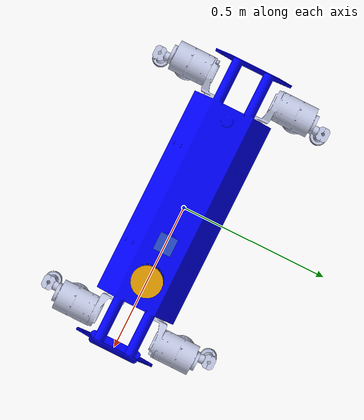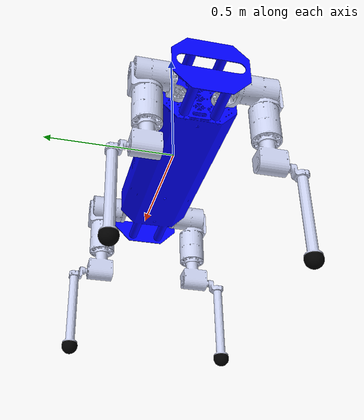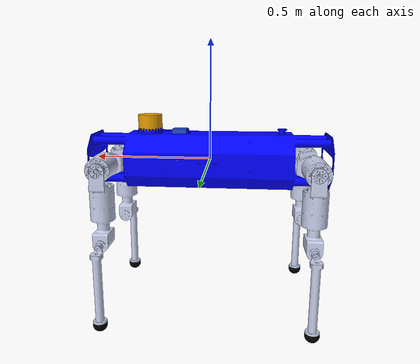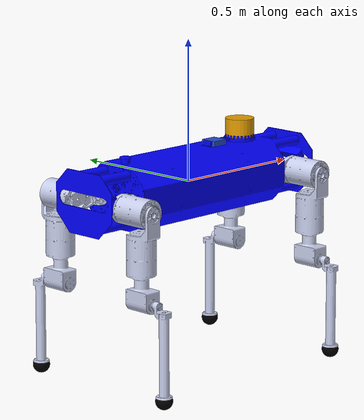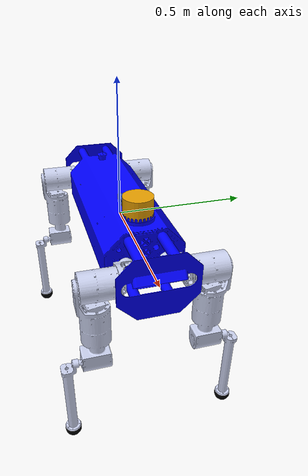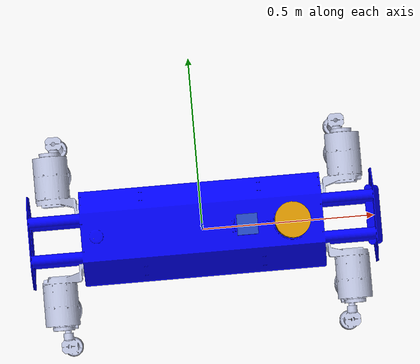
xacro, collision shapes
<?xml version="1.0" encoding="utf-8"?>
<robot name="quadruped_model" xmlns:xacro="http://ros.org/wiki/xacro">

    <xacro:include filename="$(find velodyne_description)/urdf/VLP-16.urdf.xacro"/>
    <VLP-16 parent="base_link" name="velodyne" topic="/velodyne_points" hz="100" >
        <origin xyz="0.26  0  0.118" rpy="0 0 0" />
    </VLP-16>

    <link name="imu_link">
      <inertial>
        <mass value="0.1"/>
        <origin rpy="0 0 0" xyz="0 0 0"/>
        <inertia ixx="0.0001" ixy="0" ixz="0" iyy="0.000001" iyz="0" izz="0.0001"/>
      </inertial>
      <visual>
        <origin rpy="0 0 0" xyz="0 0 0"/>
        <geometry>
          <box size="0.06 0.06 0.02"/>
        </geometry>
      </visual>
      <collision>
        <origin rpy="0 0 0" xyz="0 0 0"/>
        <geometry>
          <box size="0.06 0.06 0.02"/>
        </geometry>
      </collision>
    </link>
    <joint name="imu_joint" type="fixed">
        <axis xyz="0 0 0"/>
        <origin xyz="0.13 0 0.12" rpy="0 0 0"/>
        <parent link="base_link"/>
        <child link="imu_link"/>
    </joint>

    <xacro:include filename="$(find simpledog)/urdf/simpledog_gazebo.urdf.xacro" />
    <xacro:include filename="$(find simpledog)/urdf/joint_gazebo.urdf.xacro" />
    <xacro:include filename="$(find simpledog)/urdf/foot_sensor_gazebo.urdf.xacro" />

  <!-- simple dog joints macros configure the joint driver and param-->
  <xacro:simpledog_joint joint_prefix="front_left_1_"> </xacro:simpledog_joint>
  <xacro:simpledog_joint joint_prefix="front_left_2_"> </xacro:simpledog_joint>
  <xacro:simpledog_joint joint_prefix="front_left_3_"> </xacro:simpledog_joint>
  <xacro:simpledog_joint joint_prefix="front_right_1_"> </xacro:simpledog_joint>
  <xacro:simpledog_joint joint_prefix="front_right_2_"> </xacro:simpledog_joint>
  <xacro:simpledog_joint joint_prefix="front_right_3_"> </xacro:simpledog_joint>
  <xacro:simpledog_joint joint_prefix="rear_right_1_"> </xacro:simpledog_joint>
  <xacro:simpledog_joint joint_prefix="rear_right_2_"> </xacro:simpledog_joint>
  <xacro:simpledog_joint joint_prefix="rear_right_3_"> </xacro:simpledog_joint>
  <xacro:simpledog_joint joint_prefix="rear_left_1_"> </xacro:simpledog_joint>
  <xacro:simpledog_joint joint_prefix="rear_left_2_"> </xacro:simpledog_joint>
  <xacro:simpledog_joint joint_prefix="rear_left_3_"> </xacro:simpledog_joint>

  <xacro:simpledog_foot_sensors foot_prefix="lf_foot" joint_prefix="front_left_3_"> </xacro:simpledog_foot_sensors>
  <xacro:simpledog_foot_sensors foot_prefix="rf_foot" joint_prefix="front_right_3_"> </xacro:simpledog_foot_sensors>
  <xacro:simpledog_foot_sensors foot_prefix="rh_foot" joint_prefix="rear_right_3_"> </xacro:simpledog_foot_sensors>
  <xacro:simpledog_foot_sensors foot_prefix="lh_foot" joint_prefix="rear_left_3_"> </xacro:simpledog_foot_sensors>

  <link
    name="base_link">
    <inertial>
      <origin
        xyz="0.006699 -0.000736 0.001288"
        rpy="0 0 0" />
      <mass
        value="27.801" />
      <inertia
        ixx="0.263947"
        ixy="-0.003647"
        ixz="0.009059"
        iyy="2.018039"
        iyz="-0.000762"
        izz="2.056397" />
    </inertial>
    <visual>
      <origin
        xyz="0 0 0"
        rpy="0 0 0" />
      <geometry>
        <mesh
          filename="package://simpledog/meshes/quadruped/base_link.STL" />
      </geometry>
      <material
        name="">
        <color
          rgba="0 0 1 1" />
      </material>
    </visual>
    <collision>
      <origin
        xyz="0 0 0"
        rpy="0 0 0" />
      <geometry>
        <mesh
          filename="package://simpledog/meshes/quadruped/base_link.STL" />
      </geometry>
    </collision>
  </link>
  <link
    name="front_left_1_Link">
    <inertial>
      <origin
        xyz="0.000688 0.10488 -0.003776"
        rpy="0 0 0" />
      <mass
        value="2.9231" />
      <inertia
        ixx="0.007845"
        ixy="-0.00025"
        ixz="-7.8E-05"
        iyy="0.005144"
        iyz="0.000967"
        izz="0.00794" />
    </inertial>
    <visual>
      <origin
        xyz="0 0 0"
        rpy="0 0 0" />
      <geometry>
        <mesh
          filename="package://simpledog/meshes/quadruped/Origin_front_left_1_link.STL" />
      </geometry>
      <material
        name="">
        <color
          rgba="0.79216 0.81961 0.93333 1" />
      </material>
    </visual>
    <collision>
      <origin
        xyz="0 0 0"
        rpy="0 0 0" />
      <geometry>
        <mesh
          filename="package://simpledog/meshes/quadruped/Origin_front_left_1_link.STL" />
      </geometry>
    </collision>
  </link>
  <joint
    name="front_left_1_joint"
    type="revolute">
    <origin
      xyz="0.427 0.075 -0.0095"
      rpy="0 1.5708 0" />
    <parent
      link="base_link" />
    <child
      link="front_left_1_Link" />
    <axis
      xyz="0 0 1" />
      <limit
      effort="300"
      velocity="10"
      lower="-3.0"
      upper="3.0"/>
    <dynamics damping="0.7"/>
  </joint>
  <link
    name="front_left_2_Link">
    <inertial>
      <origin
        xyz="0.18475 3.2E-05 0.12906"
        rpy="0 0 0" />
      <mass
        value="4.2164" />
      <inertia
        ixx="0.00627"
        ixy="-0.000181"
        ixz="-8.8E-05"
        iyy="0.029233"
        iyz="9.2E-05"
        izz="0.028163" />
    </inertial>
    <visual>
      <origin
        xyz="0 0 0"
        rpy="0 0 0" />
      <geometry>
        <mesh
          filename="package://simpledog/meshes/quadruped/Origin_front_left_2_link.STL" />
      </geometry>
      <material
        name="">
        <color
          rgba="0.79216 0.81961 0.93333 1" />
      </material>
    </visual>
    <collision>
      <origin
        xyz="0 0 0"
        rpy="0 0 0" />
      <geometry>
        <mesh
          filename="package://simpledog/meshes/quadruped/Origin_front_left_2_link.STL" />
      </geometry>
    </collision>
  </link>
  <joint
    name="front_left_2_joint"
    type="continuous">
    <origin
      xyz="0 0 0"
      rpy="-1.5708 0 0" />
    <parent
      link="front_left_1_Link" />
    <child
      link="front_left_2_Link" />
    <axis
      xyz="0 0 1" />
      <limit
      effort="300"
      velocity="10"
      lower="-7.0"
      upper="7.0"/>
    <dynamics damping="0.7"/>
  </joint>
  <link
    name="front_left_3_Link">
    <inertial>
      <origin
        xyz="0.20231 0.000199 0.22543"
        rpy="0 0 0" />
      <mass
        value="0.44457" />
      <inertia
        ixx="0.000397"
        ixy="-4E-06"
        ixz="0.000261"
        iyy="0.0065"
        iyz="-2.4E-05"
        izz="0.006214" />
    </inertial>
    <visual>
      <origin
        xyz="0 0 0"
        rpy="0 0 0" />
      <geometry>
        <mesh
          filename="package://simpledog/meshes/quadruped/Origin_front_left_3_link.STL" />
      </geometry>
      <material
        name="">
        <color
          rgba="0.79216 0.81961 0.93333 1" />
      </material>
    </visual>
    <collision>
      <origin
        xyz="0 0 0"
        rpy="0 0 0" />
      <geometry>
        <mesh
          filename="package://simpledog/meshes/quadruped/Origin_front_left_3_link.STL" />
      </geometry>
    </collision>
  </link>
  <joint
    name="front_left_3_joint"
    type="continuous">
    <origin
      xyz="0.308 0 0"
      rpy="0 0 0" />
    <parent
      link="front_left_2_Link" />
    <child
      link="front_left_3_Link" />
    <axis
      xyz="0 0 1" />
      <limit
      effort="300"
      velocity="10"
      lower="-3.0"
      upper="3.0"/>
      <dynamics damping="0.7"/>
  </joint>
  <link
    name="lf_foot_Link">
    <inertial>
      <origin
        xyz="0.022126 -1.2357E-13 0.00049896"
        rpy="0 0 0" />
      <mass
        value="0.03332" />
      <inertia
        ixx="1.9126E-05"
        ixy="-1.1072E-18"
        ixz="-4.1175E-20"
        iyy="0"
        iyz="1.5428E-10"
        izz="1.3678E-05" />
    </inertial>
    <visual>
      <origin
        xyz="0 0 0"
        rpy="0 0 0" />
      <geometry>
        <mesh
          filename="package://simpledog/meshes/quadruped/Origin_lf_foot_link.STL" />
      </geometry>
      <material
        name="">
        <color
          rgba="0 0 0 1" />
      </material>
    </visual>
    <collision>
      <origin
        xyz="0 0 0"
        rpy="0 0 0" />
      <geometry>
        <mesh
          filename="package://simpledog/meshes/quadruped/Origin_lf_foot_link.STL" />
      </geometry>
    </collision>
  </link>
  <joint
    name="lf_foot_joint"
    type="fixed">
    <origin
      xyz="0.308 0 0.23"
      rpy="0 0 0" />
    <parent
      link="front_left_3_Link" />
    <child
      link="lf_foot_Link" />
    <axis
      xyz="0 0 0" />
  </joint>
  <link
    name="front_right_1_Link">
    <inertial>
      <origin
        xyz="-0.000688 0.104882 0.003776"
        rpy="0 0 0" />
      <mass
        value="2.923111" />
      <inertia
        ixx="0.007845"
        ixy="0.00025"
        ixz="-7.8E-05"
        iyy="0.005144"
        iyz="-0.000967"
        izz="0.00794" />
    </inertial>
    <visual>
      <origin
        xyz="0 0 0"
        rpy="0 0 0" />
      <geometry>
        <mesh
          filename="package://simpledog/meshes/quadruped/Origin_front_right_1_link.STL" />
      </geometry>
      <material
        name="">
        <color
          rgba="0.79216 0.81961 0.93333 1" />
      </material>
    </visual>
    <collision>
      <origin
        xyz="0 0 0"
        rpy="0 0 0" />
      <geometry>
        <mesh
          filename="package://simpledog/meshes/quadruped/Origin_front_right_1_link.STL" />
      </geometry>
    </collision>
  </link>
  <joint
    name="front_right_1_joint"
    type="revolute">
    <origin
      xyz="0.427 -0.075 -0.0095"
      rpy="3.1416 1.5708 0" />
    <parent
      link="base_link" />
    <child
      link="front_right_1_Link" />
    <axis
      xyz="0 0 1" />
      <limit
      effort="300"
      velocity="10"
      lower="-3.0"
      upper="3.0"/>
    <dynamics damping="0.7"/>
  </joint>
  <link
    name="front_right_2_Link">
    <inertial>
      <origin
        xyz="0.184747 3.2E-05 0.129056"
        rpy="0 0 0" />
      <mass
        value="4.216358" />
      <inertia
        ixx="0.00627"
        ixy="-0.000181"
        ixz="-8.8E-05"
        iyy="0.029233"
        iyz="9.2E-05"
        izz="0.028163" />
    </inertial>
    <visual>
      <origin
        xyz="0 0 0"
        rpy="0 0 0" />
      <geometry>
        <mesh
          filename="package://simpledog/meshes/quadruped/Origin_front_right_2_link.STL" />
      </geometry>
      <material
        name="">
        <color
          rgba="0.79216 0.81961 0.93333 1" />
      </material>
    </visual>
    <collision>
      <origin
        xyz="0 0 0"
        rpy="0 0 0" />
      <geometry>
        <mesh
          filename="package://simpledog/meshes/quadruped/Origin_front_right_2_link.STL" />
      </geometry>
    </collision>
  </link>
  <joint
    name="front_right_2_joint"
    type="continuous">
    <origin
      xyz="0 0 0"
      rpy="-1.5708 0 0" />
    <parent
      link="front_right_1_Link" />
    <child
      link="front_right_2_Link" />
    <axis
      xyz="0 0 1" />
      <limit
      effort="300"
      velocity="10"
      lower="-7.0"
      upper="7.0"/>
    <dynamics damping="0.7"/>
  </joint>
  <link
    name="front_right_3_Link">
    <inertial>
      <origin
        xyz="0.202313 0.000199 0.225432"
        rpy="0 0 0" />
      <mass
        value="0.444569" />
      <inertia
        ixx="0.000397"
        ixy="-4E-06"
        ixz="0.000261"
        iyy="0.0065"
        iyz="-2.4E-05"
        izz="0.006214" />
    </inertial>
    <visual>
      <origin
        xyz="0 0 0"
        rpy="0 0 0" />
      <geometry>
        <mesh
          filename="package://simpledog/meshes/quadruped/Origin_front_right_3_link.STL" />
      </geometry>
      <material
        name="">
        <color
          rgba="0.79216 0.81961 0.93333 1" />
      </material>
    </visual>
    <collision>
      <origin
        xyz="0 0 0"
        rpy="0 0 0" />
      <geometry>
        <mesh
          filename="package://simpledog/meshes/quadruped/Origin_front_right_3_link.STL" />
      </geometry>
    </collision>
  </link>
  <joint
    name="front_right_3_joint"
    type="continuous">
    <origin
      xyz="0.308 0 0"
      rpy="0 0 0" />
    <parent
      link="front_right_2_Link" />
    <child
      link="front_right_3_Link" />
    <axis
      xyz="0 0 1" />
      <limit
      effort="300"
      velocity="10"
      lower="-3.0"
      upper="3.0"/>
    <dynamics damping="0.7"/>
  </joint>
  <link
    name="rf_foot_Link">
    <inertial>
      <origin
        xyz="0.022126 -4.4892E-13 -1.0375E-06"
        rpy="0 0 0" />
      <mass
        value="0.03332" />
      <inertia
        ixx="1.9126E-05"
        ixy="-1.0162E-18"
        ixz="-1.1377E-19"
        iyy="1.3677E-05"
        iyz="-6.5798E-11"
        izz="1.3678E-05" />
    </inertial>
    <visual>
      <origin
        xyz="0 0 0"
        rpy="0 0 0" />
      <geometry>
        <mesh
          filename="package://simpledog/meshes/quadruped/Orgin_rf_foot_link.STL" />
      </geometry>
      <material
        name="">
        <color
          rgba="0 0 0 1" />
      </material>
    </visual>
    <collision>
      <origin
        xyz="0 0 0"
        rpy="0 0 0" />
      <geometry>
        <mesh
          filename="package://simpledog/meshes/quadruped/Orgin_rf_foot_link.STL" />
      </geometry>
    </collision>
  </link>
  <joint
    name="rf_foot_Link"
    type="fixed">
    <origin
      xyz="0.308 0 0.22053"
      rpy="0 0 0" />
    <parent
      link="front_right_3_Link" />
    <child
      link="rf_foot_Link" />
    <axis
      xyz="0 0 0" />
  </joint>
  <link
    name="rear_left_1_Link">
    <inertial>
      <origin
        xyz="-0.000688 0.10488 0.003776"
        rpy="0 0 0" />
      <mass
        value="2.9231" />
      <inertia
        ixx="0.007845"
        ixy="0.0025"
        ixz="-7.8E-05"
        iyy="0.005144"
        iyz="-0.000967"
        izz="0.00794" />
    </inertial>
    <visual>
      <origin
        xyz="0 0 0"
        rpy="0 0 0" />
      <geometry>
        <mesh
          filename="package://simpledog/meshes/quadruped/Origin_rear_left_1_link.STL" />
      </geometry>
      <material
        name="">
        <color
          rgba="0.79216 0.81961 0.93333 1" />
      </material>
    </visual>
    <collision>
      <origin
        xyz="0 0 0"
        rpy="0 0 0" />
      <geometry>
        <mesh
          filename="package://simpledog/meshes/quadruped/Origin_rear_left_1_link.STL" />
      </geometry>
    </collision>
  </link>
  <joint
    name="rear_left_1_joint"
    type="revolute">
    <origin
      xyz="-0.427 0.075 -0.0095"
      rpy="0 1.5708 0" />
    <parent
      link="base_link" />
    <child
      link="rear_left_1_Link" />
    <axis
      xyz="0 0 1" />
      <limit
      effort="300"
      velocity="10"
      lower="-3.0"
      upper="3.0"/>
    <dynamics damping="0.7"/>
  </joint>
  <link
    name="rear_left_2_Link">
    <inertial>
      <origin
        xyz="0.184717 3.2E-05 0.129056"
        rpy="0 0 0" />
      <mass
        value="4.216358" />
      <inertia
        ixx="0.00627"
        ixy="-0.000181"
        ixz="-8.8E-05"
        iyy="0.029233"
        iyz="9.2E-05"
        izz="0.028163" />
    </inertial>
    <visual>
      <origin
        xyz="0 0 0"
        rpy="0 0 0" />
      <geometry>
        <mesh
          filename="package://simpledog/meshes/quadruped/Origin_rear_left_2_link.STL" />
      </geometry>
      <material
        name="">
        <color
          rgba="0.79216 0.81961 0.93333 1" />
      </material>
    </visual>
    <collision>
      <origin
        xyz="0 0 0"
        rpy="0 0 0" />
      <geometry>
        <mesh
          filename="package://simpledog/meshes/quadruped/Origin_rear_left_2_link.STL" />
      </geometry>
    </collision>
  </link>
  <joint
    name="rear_left_2_joint"
    type="continuous">
    <origin
      xyz="0 0 0"
      rpy="-1.5708 0 0" />
    <parent
      link="rear_left_1_Link" />
    <child
      link="rear_left_2_Link" />
    <axis
      xyz="0 0 1" />
      <limit
      effort="300"
      velocity="10"
      lower="-7.0"
      upper="7.0"/>
    <dynamics damping="0.7"/>
  </joint>
  <link
    name="rear_left_3_Link">
    <inertial>
      <origin
        xyz="0.202313 0.000199 0.225432"
        rpy="0 0 0" />
      <mass
        value="0.444569" />
      <inertia
        ixx="0.000397"
        ixy="-4E-06"
        ixz="-0.000261"
        iyy="0.0065"
        iyz="-2.4E-05"
        izz="0.006214" />
    </inertial>
    <visual>
      <origin
        xyz="0 0 0"
        rpy="0 0 0" />
      <geometry>
        <mesh
          filename="package://simpledog/meshes/quadruped/Origin_rear_left_3_link.STL" />
      </geometry>
      <material
        name="">
        <color
          rgba="0.79216 0.81961 0.93333 1" />
      </material>
    </visual>
    <collision>
      <origin
        xyz="0 0 0"
        rpy="0 0 0" />
      <geometry>
        <mesh
          filename="package://simpledog/meshes/quadruped/Origin_rear_left_3_link.STL" />
      </geometry>
    </collision>
  </link>
  <joint
    name="rear_left_3_joint"
    type="continuous">
    <origin
      xyz="0.308 0 0"
      rpy="0 0 0" />
    <parent
      link="rear_left_2_Link" />
    <child
      link="rear_left_3_Link" />
    <axis
      xyz="0 0 1" />
      <limit
      effort="300"
      velocity="10"
      lower="-3.0"
      upper="3.0"/>
    <dynamics damping="0.7"/>
  </joint>
  <link
    name="lh_foot_Link">
    <inertial>
      <origin
        xyz="0.022126 -7.7827E-14 0.00049896"
        rpy="0 0 0" />
      <mass
        value="0.03332" />
      <inertia
        ixx="1.9126E-05"
        ixy="-9.3607E-19"
        ixz="2.2915E-19"
        iyy="1.3677E-05"
        iyz="-2.7943E-10"
        izz="1.3678E-05" />
    </inertial>
    <visual>
      <origin
        xyz="0 0 0"
        rpy="0 0 0" />
      <geometry>
        <mesh
          filename="package://simpledog/meshes/quadruped/Origin_rl_foot_link.STL" />
      </geometry>
      <material
        name="">
        <color
          rgba="0 0 0 1" />
      </material>
    </visual>
    <collision>
      <origin
        xyz="0 0 0"
        rpy="0 0 0" />
      <geometry>
        <mesh
          filename="package://simpledog/meshes/quadruped/Origin_rl_foot_link.STL" />
      </geometry>
    </collision>
  </link>
  <joint
    name="lh_foot_joint"
    type="fixed">
    <origin
      xyz="0.308 0 0.23"
      rpy="0 0 0" />
    <parent
      link="rear_left_3_Link" />
    <child
      link="lh_foot_Link" />
    <axis
      xyz="0 0 0" />
  </joint>
  <link
    name="rear_right_1_Link">
    <inertial>
      <origin
        xyz="0.000688 0.104882 0.003776"
        rpy="0 0 0" />
      <mass
        value="2.923111" />
      <inertia
        ixx="0.007845"
        ixy="-0.00025"
        ixz="7.8E-05"
        iyy="0.005144"
        iyz="0.000967"
        izz="0.00794" />
    </inertial>
    <visual>
      <origin
        xyz="0 0 0"
        rpy="0 0 0" />
      <geometry>
        <mesh
          filename="package://simpledog/meshes/quadruped/Origin_rear_right_1_link.STL" />
      </geometry>
      <material
        name="">
        <color
          rgba="0.79216 0.81961 0.93333 1" />
      </material>
    </visual>
    <collision>
      <origin
        xyz="0 0 0"
        rpy="0 0 0" />
      <geometry>
        <mesh
          filename="package://simpledog/meshes/quadruped/Origin_rear_right_1_link.STL" />
      </geometry>
    </collision>
  </link>
  <joint
    name="rear_right_1_joint"
    type="revolute">
    <origin
      xyz="-0.427 -0.075 -0.0095"
      rpy="3.1416 1.5708 0" />
    <parent
      link="base_link" />
    <child
      link="rear_right_1_Link" />
    <axis
      xyz="0 0 1" />
      <limit
      effort="300"
      velocity="10"
      lower="-3.0"
      upper="3.0"/>
    <dynamics damping="0.7"/>
  </joint>
  <link
    name="rear_right_2_Link">
    <inertial>
      <origin
        xyz="0.184747 3.2E-05 0.129056"
        rpy="0 0 0" />
      <mass
        value="4.216358" />
      <inertia
        ixx="0.00627"
        ixy="-0.000181"
        ixz="-8.8E-05"
        iyy="0.029233"
        iyz="9.2E-05"
        izz="0.028163" />
    </inertial>
    <visual>
      <origin
        xyz="0 0 0"
        rpy="0 0 0" />
      <geometry>
        <mesh
          filename="package://simpledog/meshes/quadruped/Origin_rear_right_2_link.STL" />
      </geometry>
      <material
        name="">
        <color
          rgba="0.79216 0.81961 0.93333 1" />
      </material>
    </visual>
    <collision>
      <origin
        xyz="0 0 0"
        rpy="0 0 0" />
      <geometry>
        <mesh
          filename="package://simpledog/meshes/quadruped/Origin_rear_right_2_link.STL" />
      </geometry>
    </collision>
  </link>
  <joint
    name="rear_right_2_joint"
    type="continuous">
    <origin
      xyz="0 0 0"
      rpy="-1.5708 0 0" />
    <parent
      link="rear_right_1_Link" />
    <child
      link="rear_right_2_Link" />
    <axis
      xyz="0 0 1" />
      <limit
      effort="300"
      velocity="10"
      lower="-7.0"
      upper="7.0"/>
    <dynamics damping="0.7"/>
  </joint>
  <link
    name="rear_right_3_Link">
    <inertial>
      <origin
        xyz="0.202313 0.000199 0.225432"
        rpy="0 0 0" />
      <mass
        value="0.444569" />
      <inertia
        ixx="0.000397"
        ixy="-4E-06"
        ixz="0.000261"
        iyy="0.0065"
        iyz="-2.4E-05"
        izz="0.006214" />
    </inertial>
    <visual>
      <origin
        xyz="0 0 0"
        rpy="0 0 0" />
      <geometry>
        <mesh
          filename="package://simpledog/meshes/quadruped/Origin_rear_right_3_link.STL" />
      </geometry>
      <material
        name="">
        <color
          rgba="0.79216 0.81961 0.93333 1" />
      </material>
    </visual>
    <collision>
      <origin
        xyz="0 0 0"
        rpy="0 0 0" />
      <geometry>
        <mesh
          filename="package://simpledog/meshes/quadruped/Origin_rear_right_3_link.STL" />
      </geometry>
    </collision>
  </link>
  <joint
    name="rear_right_3_joint"
    type="continuous">
    <origin
      xyz="0.308 0 0"
      rpy="0 0 0" />
    <parent
      link="rear_right_2_Link" />
    <child
      link="rear_right_3_Link" />
    <axis
      xyz="0 0 1" />
      <limit
      effort="300"
      velocity="10"
      lower="-3.0"
      upper="3.0"/>
    <dynamics damping="0.7"/>
  </joint>
  <link
    name="rh_foot_Link">
    <inertial>
      <origin
        xyz="0.022126 -1.6187E-13 -1E-06"
        rpy="0 0 0" />
      <mass
        value="0.03332" />
      <inertia
        ixx="1.9126E-05"
        ixy="-9.5089E-19"
        ixz="6.7668E-20"
        iyy="1.3677E-05"
        iyz="-2.7242E-10"
        izz="1.3678E-05" />
    </inertial>
    <visual>
      <origin
        xyz="0 0 0"
        rpy="0 0 0" />
      <geometry>
        <mesh
          filename="package://simpledog/meshes/quadruped/Origin_rr_foot_link.STL" />
      </geometry>
      <material
        name="">
        <color
          rgba="0 0 0 1" />
      </material>
    </visual>
    <collision>
      <origin
        xyz="0 0 0"
        rpy="0 0 0" />
      <geometry>
        <mesh
          filename="package://simpledog/meshes/quadruped/Origin_rr_foot_link.STL" />
      </geometry>
    </collision>
  </link>
  <joint
    name="rh_foot_joint"
    type="fixed">
    <origin
      xyz="0.308 0 0.22053"
      rpy="0 0 0" />
    <parent
      link="rear_right_3_Link" />
    <child
      link="rh_foot_Link" />
    <axis
      xyz="0 0 0" />
  </joint>
</robot>

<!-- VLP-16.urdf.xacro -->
<robot xmlns:xacro="http://www.ros.org/wiki/xacro" name="VLP-16">
  <xacro:property name="M_PI" value="3.1415926535897931" />
  <xacro:macro name="VLP-16" params="*origin is_sim:=true parent:=base_link name:=velodyne tf_prefix:='' topic:=/velodyne_points organize_cloud:=false hz:=10 lasers:=16 samples:=1875 collision_range:=0.3 min_range:=0.0 max_range:=100.0 noise:=0.008 min_angle:=-${M_PI} max_angle:=${M_PI} gpu:=false">

    <joint name="${name}_base_mount_joint" type="fixed">
      <xacro:insert_block name="origin" />
      <parent link="${parent}"/>
      <child link="${name}_base_link"/>
    </joint>

    <link name="${name}_base_link">
      <inertial>
        <mass value="0.83"/>
        <origin xyz="0 0 0.03585"/>
        <inertia ixx="${(0.83 * (3.0*0.0516*0.0516 + 0.0717*0.0717)) / 12.0}" ixy="0" ixz="0"
          iyy="${(0.83 * (3.0*0.0516*0.0516 + 0.0717*0.0717)) / 12.0}" iyz="0"
          izz="${0.5 * 0.83 * (0.0516*0.0516)}"/>
      </inertial>
      <visual>
        <geometry>
          <mesh filename="package://velodyne_description/meshes/VLP16_base_1.dae" />
        </geometry>
      </visual>
      <visual>
        <geometry>
          <mesh filename="package://velodyne_description/meshes/VLP16_base_2.dae" />
        </geometry>
      </visual>
      <collision>
        <origin rpy="0 0 0" xyz="0 0 0.03585"/>
        <geometry>
          <cylinder radius="0.0516" length="0.0717"/>
        </geometry>
      </collision>
    </link>

    <joint name="${name}_base_scan_joint" type="fixed" >
      <origin xyz="0 0 0.0377" rpy="0 0 0" />
      <parent link="${name}_base_link" />
      <child link="${name}"/>
    </joint>

    <link name="${name}">
      <inertial>
        <mass value="0.01"/>
        <origin xyz="0 0 0"/>
        <inertia ixx="1e-7" ixy="0" ixz="0" iyy="1e-7" iyz="0" izz="1e-7"/>
      </inertial>
      <visual>
        <origin xyz="0 0 -0.0377" />
        <geometry>
          <mesh filename="package://velodyne_description/meshes/VLP16_scan.dae" />
        </geometry>
      </visual>
      <collision>
        <geometry>
          <sphere radius="0"/>
        </geometry>
      </collision>
    </link>

    <!-- Gazebo requires the velodyne_gazebo_plugins package -->
    <xacro:if value="${is_sim}">
        <gazebo reference="${name}">
            <xacro:if value="${gpu}">
                <sensor type="gpu_ray" name="${name}-VLP16">
                <pose>0 0 0 0 0 0</pose>
                <visualize>false</visualize>
                <update_rate>${hz}</update_rate>
                <ray>
                    <scan>
                    <horizontal>
                        <samples>${samples}</samples>
                        <resolution>1</resolution>
                        <min_angle>${min_angle}</min_angle>
                        <max_angle>${max_angle}</max_angle>
                    </horizontal>
                    <vertical>
                        <samples>${lasers}</samples>
                        <resolution>1</resolution>
                        <min_angle>-${15.0*M_PI/180.0}</min_angle>
                        <max_angle> ${15.0*M_PI/180.0}</max_angle>
                    </vertical>
                    </scan>
                    <range>
                    <min>${collision_range}</min>
                    <max>${max_range+1}</max>
                    <resolution>0.001</resolution>
                    </range>
                    <noise>
                    <type>gaussian</type>
                    <mean>0.0</mean>
                    <stddev>0.0</stddev>
                    </noise>
                </ray>
                <plugin name="gazebo_ros_laser_controller" filename="libgazebo_ros_velodyne_laser.so">
                    <ros>
                    <namespace>/${name}</namespace>
                    <remapping>~/out:=${topic}</remapping>
                    </ros>
                    <tf_prefix>${tf_prefix}</tf_prefix>
                    <frame_name>${name}</frame_name>
                    <organize_cloud>${organize_cloud}</organize_cloud>
                    <min_range>${min_range}</min_range>
                    <max_range>${max_range}</max_range>
                    <gaussian_noise>${noise}</gaussian_noise>
                </plugin>
                </sensor>
            </xacro:if>
            <xacro:unless value="${gpu}">
                <sensor type="ray" name="${name}-VLP16">
                <pose>0 0 0 0 0 0</pose>
                <visualize>false</visualize>
                <update_rate>${hz}</update_rate>
                <ray>
                    <scan>
                    <horizontal>
                        <samples>${samples}</samples>
                        <resolution>1</resolution>
                        <min_angle>${min_angle}</min_angle>
                        <max_angle>${max_angle}</max_angle>
                    </horizontal>
                    <vertical>
                        <samples>${lasers}</samples>
                        <resolution>1</resolution>
                        <min_angle>-${15.0*M_PI/180.0}</min_angle>
                        <max_angle> ${15.0*M_PI/180.0}</max_angle>
                    </vertical>
                    </scan>
                    <range>
                    <min>${collision_range}</min>
                    <max>${max_range+1}</max>
                    <resolution>0.001</resolution>
                    </range>
                    <noise>
                    <type>gaussian</type>
                    <mean>0.0</mean>
                    <stddev>0.0</stddev>
                    </noise>
                </ray>
                <plugin name="gazebo_ros_laser_controller" filename="libgazebo_ros_velodyne_laser.so">
                    <ros>
                    <namespace>/${name}</namespace>
                    <remapping>~/out:=${topic}</remapping>
                    </ros>
                    <tf_prefix>${tf_prefix}</tf_prefix>
                    <frame_name>${name}</frame_name>
                    <organize_cloud>${organize_cloud}</organize_cloud>
                    <min_range>${min_range}</min_range>
                    <max_range>${max_range}</max_range>
                    <gaussian_noise>${noise}</gaussian_noise>
                </plugin>
                </sensor>
            </xacro:unless>
        </gazebo>
    </xacro:if>

  </xacro:macro>
</robot>
